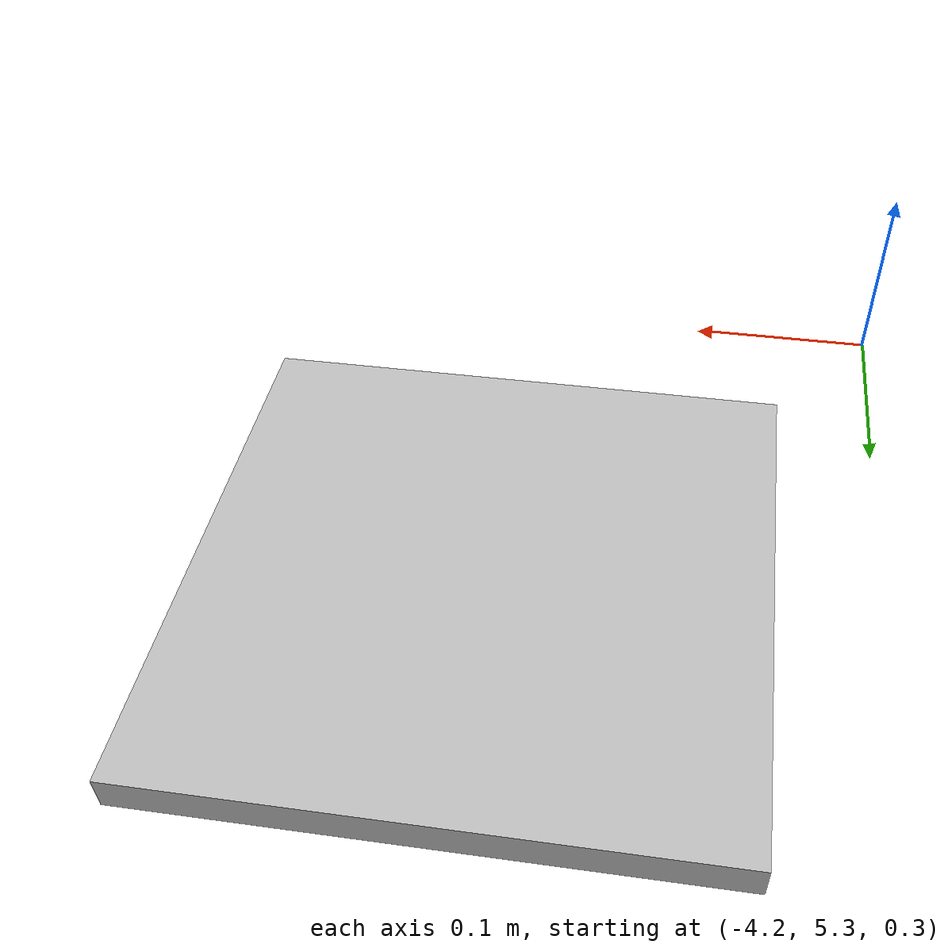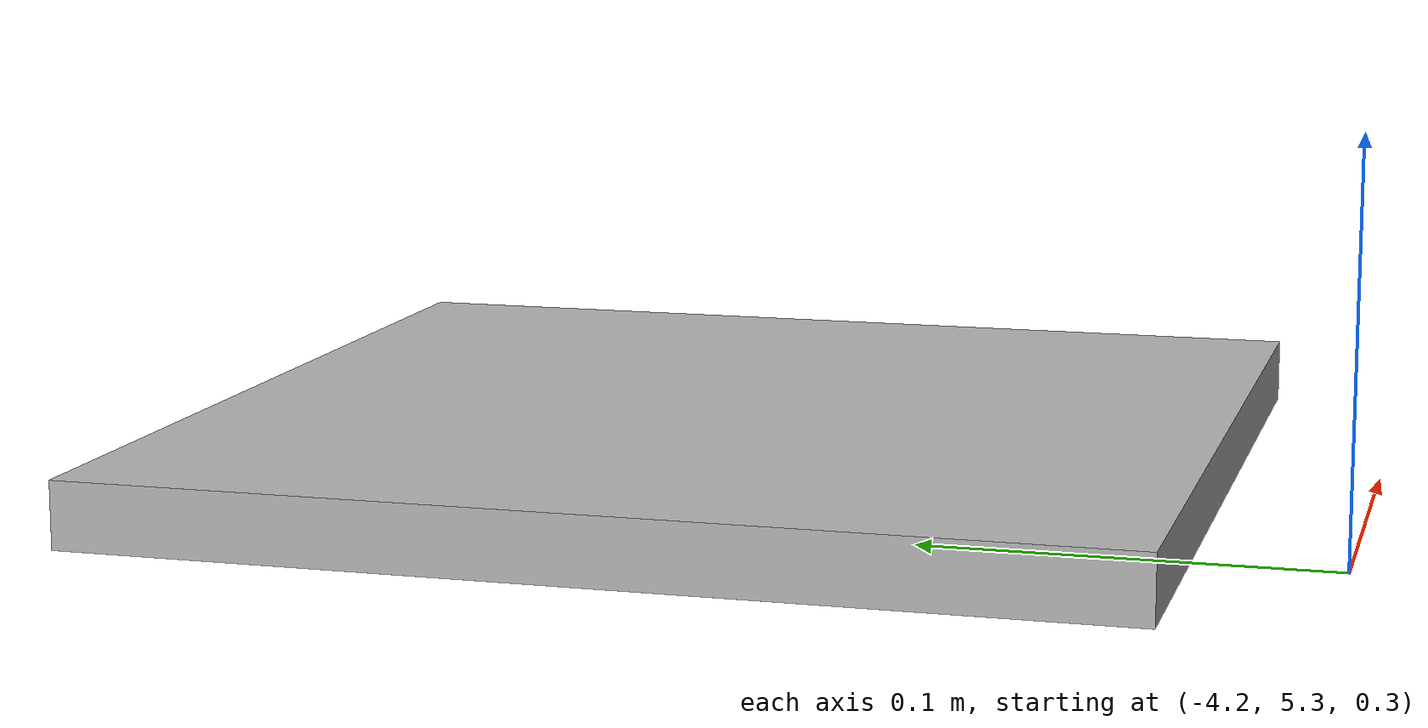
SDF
<?xml version="1.0"?>
<sdf version="1.5">
    <model name="1qr">
        <static>true</static>
        <link name="link">
            <collision name="collision1">
                <pose>-4 5.5 0.27 0 0 0</pose>
                <geometry>
                    <mesh>
                        <uri>model://1qr/meshes/qr.stl</uri>
                    </mesh>
                </geometry>
            </collision>
            <visual name="visual1">

              <pose>-4 5.5 0.27 0 0 0</pose>
              <geometry>
              <mesh>
                 <uri>model://1qr/meshes/qr2.dae</uri>
              </mesh>
              </geometry>

              <material>
                  <script>
                      <uri>model://1qr/materials/scripts</uri>
                      <uri>model://1qr/materials/textures</uri>
                      <name>qrMat/Diffuse</name>
                  </script>
              </material>
             </visual>

        </link>
    </model>
</sdf>
